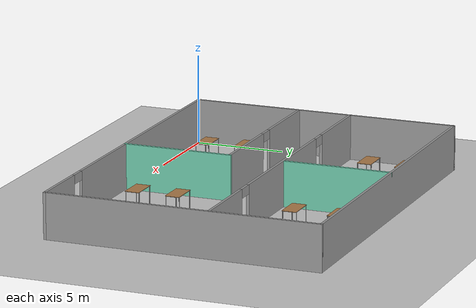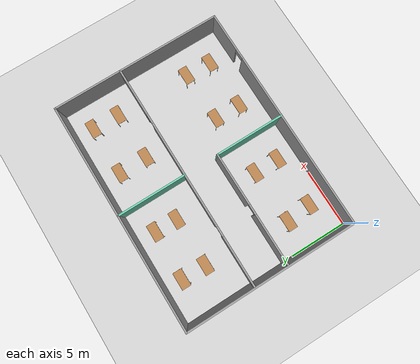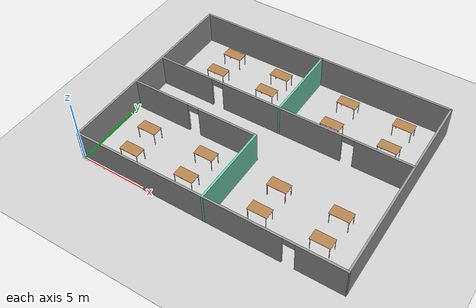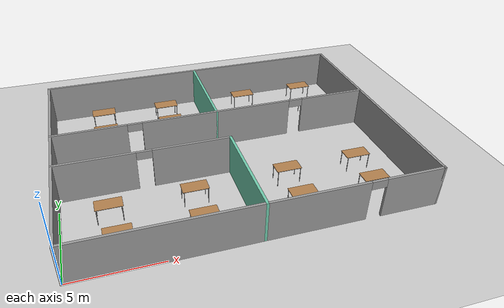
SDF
<sdf version="1.6">
 <world name="default">
  <plugin name="hello" filename="libhello.so"/>
  <light name="sun" type="directional">
   <pose>0 0 10 0 -0 0</pose>
   <diffuse>0.8 0.8 0.8 1</diffuse>
   <specular>0.2 0.2 0.2 1</specular>
   <attenuation>
    <range>1000</range>
    <constant>0.9</constant>
    <linear>0.01</linear>
    <quadratic>0.001</quadratic>
   </attenuation>
   <direction>-0.5 0.1 -0.9</direction>
  </light>
  <model name="ground_plane">
   <static>1</static>
   <link name="link">
    <collision name="collision">
     <geometry><plane><normal>0 0 1</normal><size>100 100</size></plane></geometry>
     <surface>
      <contact><collide_bitmask>65535</collide_bitmask></contact>
      <friction><ode><mu>100</mu><mu2>50</mu2></ode></friction>
     </surface>
    </collision>
    <visual name="visual">
     <cast_shadows>0</cast_shadows>
     <geometry><plane><normal>0 0 1</normal><size>100 100</size></plane></geometry>
     <material>
      <script><uri>file://media/materials/scripts/gazebo.material</uri><name>Gazebo/Grey</name></script>
     </material>
    </visual>
   </link>
  </model>
  <gravity>0 0 -9.8</gravity>
  <magnetic_field>6e-06 2.3e-05 -4.2e-05</magnetic_field>
  <atmosphere type="adiabatic"/>
  <physics name="default_physics" default="0" type="ode">
   <max_step_size>0.001</max_step_size>
   <real_time_factor>1</real_time_factor>
   <real_time_update_rate>1000</real_time_update_rate>
  </physics>
  <scene><ambient>0.4 0.4 0.4 1</ambient><background>0.7 0.7 0.7 1</background><shadows>1</shadows></scene>
  <spherical_coordinates>
   <surface_model>EARTH_WGS84</surface_model>
   <latitude_deg>0</latitude_deg>
   <longitude_deg>0</longitude_deg>
   <elevation>0</elevation>
   <heading_deg>0</heading_deg>
  </spherical_coordinates>
  <model name="mybuilding">
   <pose>10 7.5 0 0 -0 0</pose>
   <link name="Wall_11">
    <collision name="Wall_11_Collision">
     <geometry><box><size>15.15 0.15 2.5</size></box></geometry>
     <pose>0 0 1.25 0 -0 0</pose>
    </collision>
    <visual name="Wall_11_Visual">
     <pose>0 0 1.25 0 -0 0</pose>
     <geometry><box><size>15.15 0.15 2.5</size></box></geometry>
     <material>
      <script><uri>file://media/materials/scripts/gazebo.material</uri><name>Gazebo/Grey</name></script>
      <ambient>1 1 1 1</ambient>
     </material>
     <meta><layer>0</layer></meta>
    </visual>
    <pose>-10 0 0 0 -0 1.5708</pose>
   </link>
   <link name="Wall_13">
    <collision name="Wall_13_Collision">
     <geometry><box><size>20.15 0.15 2.5</size></box></geometry>
     <pose>0 0 1.25 0 -0 0</pose>
    </collision>
    <visual name="Wall_13_Visual">
     <pose>0 0 1.25 0 -0 0</pose>
     <geometry><box><size>20.15 0.15 2.5</size></box></geometry>
     <material>
      <script><uri>file://media/materials/scripts/gazebo.material</uri><name>Gazebo/Grey</name></script>
      <ambient>1 1 1 1</ambient>
     </material>
     <meta><layer>0</layer></meta>
    </visual>
    <pose>0 7.5 0 0 -0 0</pose>
   </link>
   <link name="Wall_15">
    <collision name="Wall_15_Collision">
     <geometry><box><size>15.15 0.15 2.5</size></box></geometry>
     <pose>0 0 1.25 0 -0 0</pose>
    </collision>
    <visual name="Wall_15_Visual">
     <pose>0 0 1.25 0 -0 0</pose>
     <geometry><box><size>15.15 0.15 2.5</size></box></geometry>
     <material>
      <script><uri>file://media/materials/scripts/gazebo.material</uri><name>Gazebo/Grey</name></script>
      <ambient>1 1 1 1</ambient>
     </material>
     <meta><layer>0</layer></meta>
    </visual>
    <pose>10 0 0 0 0 -1.5708</pose>
   </link>
   <link name="Wall_17">
    <pose>0 1.5 0 0 -0 0</pose>
    <visual name="Wall_17_Visual_0">
     <pose>-7.81586 0 1.25 0 -0 0</pose>
     <geometry><box><size>4.51827 0.15 2.5</size></box></geometry>
     <material>
      <script><uri>file://media/materials/scripts/gazebo.material</uri><name>Gazebo/Grey</name></script>
      <ambient>1 1 1 1</ambient>
     </material>
     <meta><layer>0</layer></meta>
    </visual>
    <collision name="Wall_17_Collision_0">
     <geometry><box><size>4.51827 0.15 2.5</size></box></geometry>
     <pose>-7.81586 0 1.25 0 -0 0</pose>
    </collision>
    <visual name="Wall_17_Visual_1">
     <pose>0.10099 0 1.25 0 -0 0</pose>
     <geometry><box><size>9.51544 0.15 2.5</size></box></geometry>
     <material>
      <script><uri>file://media/materials/scripts/gazebo.material</uri><name>Gazebo/Grey</name></script>
      <ambient>1 1 1 1</ambient>
     </material>
     <meta><layer>0</layer></meta>
    </visual>
    <collision name="Wall_17_Collision_1">
     <geometry><box><size>9.51544 0.15 2.5</size></box></geometry>
     <pose>0.10099 0 1.25 0 -0 0</pose>
    </collision>
    <visual name="Wall_17_Visual_2">
     <pose>7.91685 0 1.25 0 -0 0</pose>
     <geometry><box><size>4.31629 0.15 2.5</size></box></geometry>
     <material>
      <script><uri>file://media/materials/scripts/gazebo.material</uri><name>Gazebo/Grey</name></script>
      <ambient>1 1 1 1</ambient>
     </material>
     <meta><layer>0</layer></meta>
    </visual>
    <collision name="Wall_17_Collision_2">
     <geometry><box><size>4.31629 0.15 2.5</size></box></geometry>
     <pose>7.91685 0 1.25 0 -0 0</pose>
    </collision>
    <visual name="Wall_17_Visual_3">
     <pose>-5.10673 0 2.25 0 -0 0</pose>
     <geometry><box><size>0.9 0.15 0.5</size></box></geometry>
     <material>
      <script><uri>file://media/materials/scripts/gazebo.material</uri><name>Gazebo/Grey</name></script>
      <ambient>1 1 1 1</ambient>
     </material>
     <meta><layer>0</layer></meta>
    </visual>
    <collision name="Wall_17_Collision_3">
     <geometry><box><size>0.9 0.15 0.5</size></box></geometry>
     <pose>-5.10673 0 2.25 0 -0 0</pose>
    </collision>
    <visual name="Wall_17_Visual_4">
     <pose>5.30871 0 2.25 0 -0 0</pose>
     <geometry><box><size>0.9 0.15 0.5</size></box></geometry>
     <material>
      <script><uri>file://media/materials/scripts/gazebo.material</uri><name>Gazebo/Grey</name></script>
      <ambient>1 1 1 1</ambient>
     </material>
     <meta><layer>0</layer></meta>
    </visual>
    <collision name="Wall_17_Collision_4">
     <geometry><box><size>0.9 0.15 0.5</size></box></geometry>
     <pose>5.30871 0 2.25 0 -0 0</pose>
    </collision>
   </link>
   <link name="Wall_19">
    <collision name="Wall_19_Collision">
     <geometry><box><size>6.15 0.15 2.5</size></box></geometry>
     <pose>0 0 1.25 0 -0 0</pose>
    </collision>
    <visual name="Wall_19_Visual">
     <pose>0 0 1.25 0 -0 0</pose>
     <geometry><box><size>6.15 0.15 2.5</size></box></geometry>
     <material>
      <script><uri>file://media/materials/scripts/gazebo.material</uri><name>Gazebo/Grey</name></script>
      <ambient>0.435294 0.796078 0.67451 1</ambient>
     </material>
     <meta><layer>0</layer></meta>
    </visual>
    <pose>0 4.5 0 0 0 -1.5708</pose>
   </link>
   <link name="Wall_21">
    <pose>-5 -1.5 0 0 -0 0</pose>
    <visual name="Wall_21_Visual_0">
     <pose>-2.77518 0 1.25 0 -0 0</pose>
     <geometry><box><size>4.59964 0.15 2.5</size></box></geometry>
     <material>
      <script><uri>file://media/materials/scripts/gazebo.material</uri><name>Gazebo/Grey</name></script>
      <ambient>1 1 1 1</ambient>
     </material>
     <meta><layer>0</layer></meta>
    </visual>
    <collision name="Wall_21_Collision_0">
     <geometry><box><size>4.59964 0.15 2.5</size></box></geometry>
     <pose>-2.77518 0 1.25 0 -0 0</pose>
    </collision>
    <visual name="Wall_21_Visual_1">
     <pose>2.74982 0 1.25 0 -0 0</pose>
     <geometry><box><size>4.65036 0.15 2.5</size></box></geometry>
     <material>
      <script><uri>file://media/materials/scripts/gazebo.material</uri><name>Gazebo/Grey</name></script>
      <ambient>1 1 1 1</ambient>
     </material>
     <meta><layer>0</layer></meta>
    </visual>
    <collision name="Wall_21_Collision_1">
     <geometry><box><size>4.65036 0.15 2.5</size></box></geometry>
     <pose>2.74982 0 1.25 0 -0 0</pose>
    </collision>
    <visual name="Wall_21_Visual_2">
     <pose>-0.02536 0 2.25 0 -0 0</pose>
     <geometry><box><size>0.9 0.15 0.5</size></box></geometry>
     <material>
      <script><uri>file://media/materials/scripts/gazebo.material</uri><name>Gazebo/Grey</name></script>
      <ambient>1 1 1 1</ambient>
     </material>
     <meta><layer>0</layer></meta>
    </visual>
    <collision name="Wall_21_Collision_2">
     <geometry><box><size>0.9 0.15 0.5</size></box></geometry>
     <pose>-0.02536 0 2.25 0 -0 0</pose>
    </collision>
   </link>
   <link name="Wall_24">
    <collision name="Wall_24_Collision">
     <geometry><box><size>6.15 0.15 2.5</size></box></geometry>
     <pose>0 0 1.25 0 -0 0</pose>
    </collision>
    <visual name="Wall_24_Visual">
     <pose>0 0 1.25 0 -0 0</pose>
     <geometry><box><size>6.15 0.15 2.5</size></box></geometry>
     <material>
      <script><uri>file://media/materials/scripts/gazebo.material</uri><name>Gazebo/Grey</name></script>
      <ambient>0.435294 0.796078 0.67451 1</ambient>
     </material>
     <meta><layer>0</layer></meta>
    </visual>
    <pose>0 -4.5 0 0 0 -1.5708</pose>
   </link>
   <link name="Wall_9">
    <pose>0 -7.5 0 0 -0 0</pose>
    <visual name="Wall_9_Visual_0">
     <pose>-2.20129 0 1.25 0 -0 0</pose>
     <geometry><box><size>15.7474 0.15 2.5</size></box></geometry>
     <material>
      <script><uri>file://media/materials/scripts/gazebo.material</uri><name>Gazebo/Grey</name></script>
      <ambient>1 1 1 1</ambient>
     </material>
     <meta><layer>0</layer></meta>
    </visual>
    <collision name="Wall_9_Collision_0">
     <geometry><box><size>15.7474 0.15 2.5</size></box></geometry>
     <pose>-2.20129 0 1.25 0 -0 0</pose>
    </collision>
    <visual name="Wall_9_Visual_1">
     <pose>8.32371 0 1.25 0 -0 0</pose>
     <geometry><box><size>3.50258 0.15 2.5</size></box></geometry>
     <material>
      <script><uri>file://media/materials/scripts/gazebo.material</uri><name>Gazebo/Grey</name></script>
      <ambient>1 1 1 1</ambient>
     </material>
     <meta><layer>0</layer></meta>
    </visual>
    <collision name="Wall_9_Collision_1">
     <geometry><box><size>3.50258 0.15 2.5</size></box></geometry>
     <pose>8.32371 0 1.25 0 -0 0</pose>
    </collision>
    <visual name="Wall_9_Visual_2">
     <pose>6.12242 0 2.25 0 -0 0</pose>
     <geometry><box><size>0.9 0.15 0.5</size></box></geometry>
     <material>
      <script><uri>file://media/materials/scripts/gazebo.material</uri><name>Gazebo/Grey</name></script>
      <ambient>1 1 1 1</ambient>
     </material>
     <meta><layer>0</layer></meta>
    </visual>
    <collision name="Wall_9_Collision_2">
     <geometry><box><size>0.9 0.15 0.5</size></box></geometry>
     <pose>6.12242 0 2.25 0 -0 0</pose>
    </collision>
   </link>
   <static>1</static>
  </model>
  <model name="table">
   <static>1</static>
   <link name="link">
    <collision name="surface">
     <pose>0 0 1 0 -0 0</pose>
     <geometry><box><size>1.5 0.8 0.03</size></box></geometry>
     <surface><friction><ode><mu>0.6</mu><mu2>0.6</mu2></ode></friction></surface>
    </collision>
    <visual name="visual1">
     <pose>0 0 1 0 -0 0</pose>
     <geometry><box><size>1.5 0.8 0.03</size></box></geometry>
     <material>
      <script><uri>file://media/materials/scripts/gazebo.material</uri><name>Gazebo/Wood</name></script>
     </material>
    </visual>
    <collision name="front_left_leg">
     <pose>0.68 0.38 0.5 0 -0 0</pose>
     <geometry><cylinder><radius>0.02</radius><length>1</length></cylinder></geometry>
    </collision>
    <visual name="front_left_leg">
     <pose>0.68 0.38 0.5 0 -0 0</pose>
     <geometry><cylinder><radius>0.02</radius><length>1</length></cylinder></geometry>
     <material>
      <script><uri>file://media/materials/scripts/gazebo.material</uri><name>Gazebo/Grey</name></script>
     </material>
    </visual>
    <collision name="front_right_leg">
     <pose>0.68 -0.38 0.5 0 -0 0</pose>
     <geometry><cylinder><radius>0.02</radius><length>1</length></cylinder></geometry>
    </collision>
    <visual name="front_right_leg">
     <pose>0.68 -0.38 0.5 0 -0 0</pose>
     <geometry><cylinder><radius>0.02</radius><length>1</length></cylinder></geometry>
     <material>
      <script><uri>file://media/materials/scripts/gazebo.material</uri><name>Gazebo/Grey</name></script>
     </material>
    </visual>
    <collision name="back_right_leg">
     <pose>-0.68 -0.38 0.5 0 -0 0</pose>
     <geometry><cylinder><radius>0.02</radius><length>1</length></cylinder></geometry>
    </collision>
    <visual name="back_right_leg">
     <pose>-0.68 -0.38 0.5 0 -0 0</pose>
     <geometry><cylinder><radius>0.02</radius><length>1</length></cylinder></geometry>
     <material>
      <script><uri>file://media/materials/scripts/gazebo.material</uri><name>Gazebo/Grey</name></script>
     </material>
    </visual>
    <collision name="back_left_leg">
     <pose>-0.68 0.38 0.5 0 -0 0</pose>
     <geometry><cylinder><radius>0.02</radius><length>1</length></cylinder></geometry>
    </collision>
    <visual name="back_left_leg">
     <pose>-0.68 0.38 0.5 0 -0 0</pose>
     <geometry><cylinder><radius>0.02</radius><length>1</length></cylinder></geometry>
     <material>
      <script><uri>file://media/materials/scripts/gazebo.material</uri><name>Gazebo/Grey</name></script>
     </material>
    </visual>
   </link>
   <pose>17.3802 4.37607 0 0 -0 0</pose>
  </model>
  <model name="table_clone">
   <static>1</static>
   <link name="link">
    <collision name="surface">
     <pose>0 0 1 0 -0 0</pose>
     <geometry><box><size>1.5 0.8 0.03</size></box></geometry>
     <surface><friction><ode><mu>0.6</mu><mu2>0.6</mu2></ode></friction></surface>
    </collision>
    <visual name="visual1">
     <pose>0 0 1 0 -0 0</pose>
     <geometry><box><size>1.5 0.8 0.03</size></box></geometry>
     <material>
      <script><uri>file://media/materials/scripts/gazebo.material</uri><name>Gazebo/Wood</name></script>
     </material>
    </visual>
    <collision name="front_left_leg">
     <pose>0.68 0.38 0.5 0 -0 0</pose>
     <geometry><cylinder><radius>0.02</radius><length>1</length></cylinder></geometry>
    </collision>
    <visual name="front_left_leg">
     <pose>0.68 0.38 0.5 0 -0 0</pose>
     <geometry><cylinder><radius>0.02</radius><length>1</length></cylinder></geometry>
     <material>
      <script><uri>file://media/materials/scripts/gazebo.material</uri><name>Gazebo/Grey</name></script>
     </material>
    </visual>
    <collision name="front_right_leg">
     <pose>0.68 -0.38 0.5 0 -0 0</pose>
     <geometry><cylinder><radius>0.02</radius><length>1</length></cylinder></geometry>
    </collision>
    <visual name="front_right_leg">
     <pose>0.68 -0.38 0.5 0 -0 0</pose>
     <geometry><cylinder><radius>0.02</radius><length>1</length></cylinder></geometry>
     <material>
      <script><uri>file://media/materials/scripts/gazebo.material</uri><name>Gazebo/Grey</name></script>
     </material>
    </visual>
    <collision name="back_right_leg">
     <pose>-0.68 -0.38 0.5 0 -0 0</pose>
     <geometry><cylinder><radius>0.02</radius><length>1</length></cylinder></geometry>
    </collision>
    <visual name="back_right_leg">
     <pose>-0.68 -0.38 0.5 0 -0 0</pose>
     <geometry><cylinder><radius>0.02</radius><length>1</length></cylinder></geometry>
     <material>
      <script><uri>file://media/materials/scripts/gazebo.material</uri><name>Gazebo/Grey</name></script>
     </material>
    </visual>
    <collision name="back_left_leg">
     <pose>-0.68 0.38 0.5 0 -0 0</pose>
     <geometry><cylinder><radius>0.02</radius><length>1</length></cylinder></geometry>
    </collision>
    <visual name="back_left_leg">
     <pose>-0.68 0.38 0.5 0 -0 0</pose>
     <geometry><cylinder><radius>0.02</radius><length>1</length></cylinder></geometry>
     <material>
      <script><uri>file://media/materials/scripts/gazebo.material</uri><name>Gazebo/Grey</name></script>
     </material>
    </visual>
   </link>
   <pose>12.8854 1.98216 0 0 -0 0</pose>
  </model>
  <model name="table_clone_0">
   <static>1</static>
   <link name="link">
    <collision name="surface">
     <pose>0 0 1 0 -0 0</pose>
     <geometry><box><size>1.5 0.8 0.03</size></box></geometry>
     <surface><friction><ode><mu>0.6</mu><mu2>0.6</mu2></ode></friction></surface>
    </collision>
    <visual name="visual1">
     <pose>0 0 1 0 -0 0</pose>
     <geometry><box><size>1.5 0.8 0.03</size></box></geometry>
     <material>
      <script><uri>file://media/materials/scripts/gazebo.material</uri><name>Gazebo/Wood</name></script>
     </material>
    </visual>
    <collision name="front_left_leg">
     <pose>0.68 0.38 0.5 0 -0 0</pose>
     <geometry><cylinder><radius>0.02</radius><length>1</length></cylinder></geometry>
    </collision>
    <visual name="front_left_leg">
     <pose>0.68 0.38 0.5 0 -0 0</pose>
     <geometry><cylinder><radius>0.02</radius><length>1</length></cylinder></geometry>
     <material>
      <script><uri>file://media/materials/scripts/gazebo.material</uri><name>Gazebo/Grey</name></script>
     </material>
    </visual>
    <collision name="front_right_leg">
     <pose>0.68 -0.38 0.5 0 -0 0</pose>
     <geometry><cylinder><radius>0.02</radius><length>1</length></cylinder></geometry>
    </collision>
    <visual name="front_right_leg">
     <pose>0.68 -0.38 0.5 0 -0 0</pose>
     <geometry><cylinder><radius>0.02</radius><length>1</length></cylinder></geometry>
     <material>
      <script><uri>file://media/materials/scripts/gazebo.material</uri><name>Gazebo/Grey</name></script>
     </material>
    </visual>
    <collision name="back_right_leg">
     <pose>-0.68 -0.38 0.5 0 -0 0</pose>
     <geometry><cylinder><radius>0.02</radius><length>1</length></cylinder></geometry>
    </collision>
    <visual name="back_right_leg">
     <pose>-0.68 -0.38 0.5 0 -0 0</pose>
     <geometry><cylinder><radius>0.02</radius><length>1</length></cylinder></geometry>
     <material>
      <script><uri>file://media/materials/scripts/gazebo.material</uri><name>Gazebo/Grey</name></script>
     </material>
    </visual>
    <collision name="back_left_leg">
     <pose>-0.68 0.38 0.5 0 -0 0</pose>
     <geometry><cylinder><radius>0.02</radius><length>1</length></cylinder></geometry>
    </collision>
    <visual name="back_left_leg">
     <pose>-0.68 0.38 0.5 0 -0 0</pose>
     <geometry><cylinder><radius>0.02</radius><length>1</length></cylinder></geometry>
     <material>
      <script><uri>file://media/materials/scripts/gazebo.material</uri><name>Gazebo/Grey</name></script>
     </material>
    </visual>
   </link>
   <pose>12.9011 4.26699 0 0 -0 0</pose>
  </model>
  <model name="table_clone_1">
   <static>1</static>
   <link name="link">
    <collision name="surface">
     <pose>0 0 1 0 -0 0</pose>
     <geometry><box><size>1.5 0.8 0.03</size></box></geometry>
     <surface><friction><ode><mu>0.6</mu><mu2>0.6</mu2></ode></friction></surface>
    </collision>
    <visual name="visual1">
     <pose>0 0 1 0 -0 0</pose>
     <geometry><box><size>1.5 0.8 0.03</size></box></geometry>
     <material>
      <script><uri>file://media/materials/scripts/gazebo.material</uri><name>Gazebo/Wood</name></script>
     </material>
    </visual>
    <collision name="front_left_leg">
     <pose>0.68 0.38 0.5 0 -0 0</pose>
     <geometry><cylinder><radius>0.02</radius><length>1</length></cylinder></geometry>
    </collision>
    <visual name="front_left_leg">
     <pose>0.68 0.38 0.5 0 -0 0</pose>
     <geometry><cylinder><radius>0.02</radius><length>1</length></cylinder></geometry>
     <material>
      <script><uri>file://media/materials/scripts/gazebo.material</uri><name>Gazebo/Grey</name></script>
     </material>
    </visual>
    <collision name="front_right_leg">
     <pose>0.68 -0.38 0.5 0 -0 0</pose>
     <geometry><cylinder><radius>0.02</radius><length>1</length></cylinder></geometry>
    </collision>
    <visual name="front_right_leg">
     <pose>0.68 -0.38 0.5 0 -0 0</pose>
     <geometry><cylinder><radius>0.02</radius><length>1</length></cylinder></geometry>
     <material>
      <script><uri>file://media/materials/scripts/gazebo.material</uri><name>Gazebo/Grey</name></script>
     </material>
    </visual>
    <collision name="back_right_leg">
     <pose>-0.68 -0.38 0.5 0 -0 0</pose>
     <geometry><cylinder><radius>0.02</radius><length>1</length></cylinder></geometry>
    </collision>
    <visual name="back_right_leg">
     <pose>-0.68 -0.38 0.5 0 -0 0</pose>
     <geometry><cylinder><radius>0.02</radius><length>1</length></cylinder></geometry>
     <material>
      <script><uri>file://media/materials/scripts/gazebo.material</uri><name>Gazebo/Grey</name></script>
     </material>
    </visual>
    <collision name="back_left_leg">
     <pose>-0.68 0.38 0.5 0 -0 0</pose>
     <geometry><cylinder><radius>0.02</radius><length>1</length></cylinder></geometry>
    </collision>
    <visual name="back_left_leg">
     <pose>-0.68 0.38 0.5 0 -0 0</pose>
     <geometry><cylinder><radius>0.02</radius><length>1</length></cylinder></geometry>
     <material>
      <script><uri>file://media/materials/scripts/gazebo.material</uri><name>Gazebo/Grey</name></script>
     </material>
    </visual>
   </link>
   <pose>17.2977 2.08785 0 0 -0 0</pose>
  </model>
  <model name="table_0">
   <static>1</static>
   <link name="link">
    <collision name="surface">
     <pose>0 0 1 0 -0 0</pose>
     <geometry><box><size>1.5 0.8 0.03</size></box></geometry>
     <surface><friction><ode><mu>0.6</mu><mu2>0.6</mu2></ode></friction></surface>
    </collision>
    <visual name="visual1">
     <pose>0 0 1 0 -0 0</pose>
     <geometry><box><size>1.5 0.8 0.03</size></box></geometry>
     <material>
      <script><uri>file://media/materials/scripts/gazebo.material</uri><name>Gazebo/Wood</name></script>
     </material>
    </visual>
    <collision name="front_left_leg">
     <pose>0.68 0.38 0.5 0 -0 0</pose>
     <geometry><cylinder><radius>0.02</radius><length>1</length></cylinder></geometry>
    </collision>
    <visual name="front_left_leg">
     <pose>0.68 0.38 0.5 0 -0 0</pose>
     <geometry><cylinder><radius>0.02</radius><length>1</length></cylinder></geometry>
     <material>
      <script><uri>file://media/materials/scripts/gazebo.material</uri><name>Gazebo/Grey</name></script>
     </material>
    </visual>
    <collision name="front_right_leg">
     <pose>0.68 -0.38 0.5 0 -0 0</pose>
     <geometry><cylinder><radius>0.02</radius><length>1</length></cylinder></geometry>
    </collision>
    <visual name="front_right_leg">
     <pose>0.68 -0.38 0.5 0 -0 0</pose>
     <geometry><cylinder><radius>0.02</radius><length>1</length></cylinder></geometry>
     <material>
      <script><uri>file://media/materials/scripts/gazebo.material</uri><name>Gazebo/Grey</name></script>
     </material>
    </visual>
    <collision name="back_right_leg">
     <pose>-0.68 -0.38 0.5 0 -0 0</pose>
     <geometry><cylinder><radius>0.02</radius><length>1</length></cylinder></geometry>
    </collision>
    <visual name="back_right_leg">
     <pose>-0.68 -0.38 0.5 0 -0 0</pose>
     <geometry><cylinder><radius>0.02</radius><length>1</length></cylinder></geometry>
     <material>
      <script><uri>file://media/materials/scripts/gazebo.material</uri><name>Gazebo/Grey</name></script>
     </material>
    </visual>
    <collision name="back_left_leg">
     <pose>-0.68 0.38 0.5 0 -0 0</pose>
     <geometry><cylinder><radius>0.02</radius><length>1</length></cylinder></geometry>
    </collision>
    <visual name="back_left_leg">
     <pose>-0.68 0.38 0.5 0 -0 0</pose>
     <geometry><cylinder><radius>0.02</radius><length>1</length></cylinder></geometry>
     <material>
      <script><uri>file://media/materials/scripts/gazebo.material</uri><name>Gazebo/Grey</name></script>
     </material>
    </visual>
   </link>
   <pose>7.55328 13.3497 0 0 -0 0</pose>
  </model>
  <model name="table_clone_2">
   <static>1</static>
   <link name="link">
    <collision name="surface">
     <pose>0 0 1 0 -0 0</pose>
     <geometry><box><size>1.5 0.8 0.03</size></box></geometry>
     <surface><friction><ode><mu>0.6</mu><mu2>0.6</mu2></ode></friction></surface>
    </collision>
    <visual name="visual1">
     <pose>0 0 1 0 -0 0</pose>
     <geometry><box><size>1.5 0.8 0.03</size></box></geometry>
     <material>
      <script><uri>file://media/materials/scripts/gazebo.material</uri><name>Gazebo/Wood</name></script>
     </material>
    </visual>
    <collision name="front_left_leg">
     <pose>0.68 0.38 0.5 0 -0 0</pose>
     <geometry><cylinder><radius>0.02</radius><length>1</length></cylinder></geometry>
    </collision>
    <visual name="front_left_leg">
     <pose>0.68 0.38 0.5 0 -0 0</pose>
     <geometry><cylinder><radius>0.02</radius><length>1</length></cylinder></geometry>
     <material>
      <script><uri>file://media/materials/scripts/gazebo.material</uri><name>Gazebo/Grey</name></script>
     </material>
    </visual>
    <collision name="front_right_leg">
     <pose>0.68 -0.38 0.5 0 -0 0</pose>
     <geometry><cylinder><radius>0.02</radius><length>1</length></cylinder></geometry>
    </collision>
    <visual name="front_right_leg">
     <pose>0.68 -0.38 0.5 0 -0 0</pose>
     <geometry><cylinder><radius>0.02</radius><length>1</length></cylinder></geometry>
     <material>
      <script><uri>file://media/materials/scripts/gazebo.material</uri><name>Gazebo/Grey</name></script>
     </material>
    </visual>
    <collision name="back_right_leg">
     <pose>-0.68 -0.38 0.5 0 -0 0</pose>
     <geometry><cylinder><radius>0.02</radius><length>1</length></cylinder></geometry>
    </collision>
    <visual name="back_right_leg">
     <pose>-0.68 -0.38 0.5 0 -0 0</pose>
     <geometry><cylinder><radius>0.02</radius><length>1</length></cylinder></geometry>
     <material>
      <script><uri>file://media/materials/scripts/gazebo.material</uri><name>Gazebo/Grey</name></script>
     </material>
    </visual>
    <collision name="back_left_leg">
     <pose>-0.68 0.38 0.5 0 -0 0</pose>
     <geometry><cylinder><radius>0.02</radius><length>1</length></cylinder></geometry>
    </collision>
    <visual name="back_left_leg">
     <pose>-0.68 0.38 0.5 0 -0 0</pose>
     <geometry><cylinder><radius>0.02</radius><length>1</length></cylinder></geometry>
     <material>
      <script><uri>file://media/materials/scripts/gazebo.material</uri><name>Gazebo/Grey</name></script>
     </material>
    </visual>
   </link>
   <pose>3.3068 13.4619 0 0 -0 0</pose>
  </model>
  <model name="table_1">
   <static>1</static>
   <link name="link">
    <collision name="surface">
     <pose>0 0 1 0 -0 0</pose>
     <geometry><box><size>1.5 0.8 0.03</size></box></geometry>
     <surface><friction><ode><mu>0.6</mu><mu2>0.6</mu2></ode></friction></surface>
    </collision>
    <visual name="visual1">
     <pose>0 0 1 0 -0 0</pose>
     <geometry><box><size>1.5 0.8 0.03</size></box></geometry>
     <material>
      <script><uri>file://media/materials/scripts/gazebo.material</uri><name>Gazebo/Wood</name></script>
     </material>
    </visual>
    <collision name="front_left_leg">
     <pose>0.68 0.38 0.5 0 -0 0</pose>
     <geometry><cylinder><radius>0.02</radius><length>1</length></cylinder></geometry>
    </collision>
    <visual name="front_left_leg">
     <pose>0.68 0.38 0.5 0 -0 0</pose>
     <geometry><cylinder><radius>0.02</radius><length>1</length></cylinder></geometry>
     <material>
      <script><uri>file://media/materials/scripts/gazebo.material</uri><name>Gazebo/Grey</name></script>
     </material>
    </visual>
    <collision name="front_right_leg">
     <pose>0.68 -0.38 0.5 0 -0 0</pose>
     <geometry><cylinder><radius>0.02</radius><length>1</length></cylinder></geometry>
    </collision>
    <visual name="front_right_leg">
     <pose>0.68 -0.38 0.5 0 -0 0</pose>
     <geometry><cylinder><radius>0.02</radius><length>1</length></cylinder></geometry>
     <material>
      <script><uri>file://media/materials/scripts/gazebo.material</uri><name>Gazebo/Grey</name></script>
     </material>
    </visual>
    <collision name="back_right_leg">
     <pose>-0.68 -0.38 0.5 0 -0 0</pose>
     <geometry><cylinder><radius>0.02</radius><length>1</length></cylinder></geometry>
    </collision>
    <visual name="back_right_leg">
     <pose>-0.68 -0.38 0.5 0 -0 0</pose>
     <geometry><cylinder><radius>0.02</radius><length>1</length></cylinder></geometry>
     <material>
      <script><uri>file://media/materials/scripts/gazebo.material</uri><name>Gazebo/Grey</name></script>
     </material>
    </visual>
    <collision name="back_left_leg">
     <pose>-0.68 0.38 0.5 0 -0 0</pose>
     <geometry><cylinder><radius>0.02</radius><length>1</length></cylinder></geometry>
    </collision>
    <visual name="back_left_leg">
     <pose>-0.68 0.38 0.5 0 -0 0</pose>
     <geometry><cylinder><radius>0.02</radius><length>1</length></cylinder></geometry>
     <material>
      <script><uri>file://media/materials/scripts/gazebo.material</uri><name>Gazebo/Grey</name></script>
     </material>
    </visual>
   </link>
   <pose>17.504 13.3719 0 0 -0 0</pose>
  </model>
  <model name="table_2">
   <static>1</static>
   <link name="link">
    <collision name="surface">
     <pose>0 0 1 0 -0 0</pose>
     <geometry><box><size>1.5 0.8 0.03</size></box></geometry>
     <surface><friction><ode><mu>0.6</mu><mu2>0.6</mu2></ode></friction></surface>
    </collision>
    <visual name="visual1">
     <pose>0 0 1 0 -0 0</pose>
     <geometry><box><size>1.5 0.8 0.03</size></box></geometry>
     <material>
      <script><uri>file://media/materials/scripts/gazebo.material</uri><name>Gazebo/Wood</name></script>
     </material>
    </visual>
    <collision name="front_left_leg">
     <pose>0.68 0.38 0.5 0 -0 0</pose>
     <geometry><cylinder><radius>0.02</radius><length>1</length></cylinder></geometry>
    </collision>
    <visual name="front_left_leg">
     <pose>0.68 0.38 0.5 0 -0 0</pose>
     <geometry><cylinder><radius>0.02</radius><length>1</length></cylinder></geometry>
     <material>
      <script><uri>file://media/materials/scripts/gazebo.material</uri><name>Gazebo/Grey</name></script>
     </material>
    </visual>
    <collision name="front_right_leg">
     <pose>0.68 -0.38 0.5 0 -0 0</pose>
     <geometry><cylinder><radius>0.02</radius><length>1</length></cylinder></geometry>
    </collision>
    <visual name="front_right_leg">
     <pose>0.68 -0.38 0.5 0 -0 0</pose>
     <geometry><cylinder><radius>0.02</radius><length>1</length></cylinder></geometry>
     <material>
      <script><uri>file://media/materials/scripts/gazebo.material</uri><name>Gazebo/Grey</name></script>
     </material>
    </visual>
    <collision name="back_right_leg">
     <pose>-0.68 -0.38 0.5 0 -0 0</pose>
     <geometry><cylinder><radius>0.02</radius><length>1</length></cylinder></geometry>
    </collision>
    <visual name="back_right_leg">
     <pose>-0.68 -0.38 0.5 0 -0 0</pose>
     <geometry><cylinder><radius>0.02</radius><length>1</length></cylinder></geometry>
     <material>
      <script><uri>file://media/materials/scripts/gazebo.material</uri><name>Gazebo/Grey</name></script>
     </material>
    </visual>
    <collision name="back_left_leg">
     <pose>-0.68 0.38 0.5 0 -0 0</pose>
     <geometry><cylinder><radius>0.02</radius><length>1</length></cylinder></geometry>
    </collision>
    <visual name="back_left_leg">
     <pose>-0.68 0.38 0.5 0 -0 0</pose>
     <geometry><cylinder><radius>0.02</radius><length>1</length></cylinder></geometry>
     <material>
      <script><uri>file://media/materials/scripts/gazebo.material</uri><name>Gazebo/Grey</name></script>
     </material>
    </visual>
   </link>
   <pose>13.1412 13.36 0 0 -0 0</pose>
  </model>
  <model name="table_3">
   <static>1</static>
   <link name="link">
    <collision name="surface">
     <pose>0 0 1 0 -0 0</pose>
     <geometry><box><size>1.5 0.8 0.03</size></box></geometry>
     <surface><friction><ode><mu>0.6</mu><mu2>0.6</mu2></ode></friction></surface>
    </collision>
    <visual name="visual1">
     <pose>0 0 1 0 -0 0</pose>
     <geometry><box><size>1.5 0.8 0.03</size></box></geometry>
     <material>
      <script><uri>file://media/materials/scripts/gazebo.material</uri><name>Gazebo/Wood</name></script>
     </material>
    </visual>
    <collision name="front_left_leg">
     <pose>0.68 0.38 0.5 0 -0 0</pose>
     <geometry><cylinder><radius>0.02</radius><length>1</length></cylinder></geometry>
    </collision>
    <visual name="front_left_leg">
     <pose>0.68 0.38 0.5 0 -0 0</pose>
     <geometry><cylinder><radius>0.02</radius><length>1</length></cylinder></geometry>
     <material>
      <script><uri>file://media/materials/scripts/gazebo.material</uri><name>Gazebo/Grey</name></script>
     </material>
    </visual>
    <collision name="front_right_leg">
     <pose>0.68 -0.38 0.5 0 -0 0</pose>
     <geometry><cylinder><radius>0.02</radius><length>1</length></cylinder></geometry>
    </collision>
    <visual name="front_right_leg">
     <pose>0.68 -0.38 0.5 0 -0 0</pose>
     <geometry><cylinder><radius>0.02</radius><length>1</length></cylinder></geometry>
     <material>
      <script><uri>file://media/materials/scripts/gazebo.material</uri><name>Gazebo/Grey</name></script>
     </material>
    </visual>
    <collision name="back_right_leg">
     <pose>-0.68 -0.38 0.5 0 -0 0</pose>
     <geometry><cylinder><radius>0.02</radius><length>1</length></cylinder></geometry>
    </collision>
    <visual name="back_right_leg">
     <pose>-0.68 -0.38 0.5 0 -0 0</pose>
     <geometry><cylinder><radius>0.02</radius><length>1</length></cylinder></geometry>
     <material>
      <script><uri>file://media/materials/scripts/gazebo.material</uri><name>Gazebo/Grey</name></script>
     </material>
    </visual>
    <collision name="back_left_leg">
     <pose>-0.68 0.38 0.5 0 -0 0</pose>
     <geometry><cylinder><radius>0.02</radius><length>1</length></cylinder></geometry>
    </collision>
    <visual name="back_left_leg">
     <pose>-0.68 0.38 0.5 0 -0 0</pose>
     <geometry><cylinder><radius>0.02</radius><length>1</length></cylinder></geometry>
     <material>
      <script><uri>file://media/materials/scripts/gazebo.material</uri><name>Gazebo/Grey</name></script>
     </material>
    </visual>
   </link>
   <pose>7.33008 4.00792 0 0 -0 0</pose>
  </model>
  <model name="table_4">
   <static>1</static>
   <link name="link">
    <collision name="surface">
     <pose>0 0 1 0 -0 0</pose>
     <geometry><box><size>1.5 0.8 0.03</size></box></geometry>
     <surface><friction><ode><mu>0.6</mu><mu2>0.6</mu2></ode></friction></surface>
    </collision>
    <visual name="visual1">
     <pose>0 0 1 0 -0 0</pose>
     <geometry><box><size>1.5 0.8 0.03</size></box></geometry>
     <material>
      <script><uri>file://media/materials/scripts/gazebo.material</uri><name>Gazebo/Wood</name></script>
     </material>
    </visual>
    <collision name="front_left_leg">
     <pose>0.68 0.38 0.5 0 -0 0</pose>
     <geometry><cylinder><radius>0.02</radius><length>1</length></cylinder></geometry>
    </collision>
    <visual name="front_left_leg">
     <pose>0.68 0.38 0.5 0 -0 0</pose>
     <geometry><cylinder><radius>0.02</radius><length>1</length></cylinder></geometry>
     <material>
      <script><uri>file://media/materials/scripts/gazebo.material</uri><name>Gazebo/Grey</name></script>
     </material>
    </visual>
    <collision name="front_right_leg">
     <pose>0.68 -0.38 0.5 0 -0 0</pose>
     <geometry><cylinder><radius>0.02</radius><length>1</length></cylinder></geometry>
    </collision>
    <visual name="front_right_leg">
     <pose>0.68 -0.38 0.5 0 -0 0</pose>
     <geometry><cylinder><radius>0.02</radius><length>1</length></cylinder></geometry>
     <material>
      <script><uri>file://media/materials/scripts/gazebo.material</uri><name>Gazebo/Grey</name></script>
     </material>
    </visual>
    <collision name="back_right_leg">
     <pose>-0.68 -0.38 0.5 0 -0 0</pose>
     <geometry><cylinder><radius>0.02</radius><length>1</length></cylinder></geometry>
    </collision>
    <visual name="back_right_leg">
     <pose>-0.68 -0.38 0.5 0 -0 0</pose>
     <geometry><cylinder><radius>0.02</radius><length>1</length></cylinder></geometry>
     <material>
      <script><uri>file://media/materials/scripts/gazebo.material</uri><name>Gazebo/Grey</name></script>
     </material>
    </visual>
    <collision name="back_left_leg">
     <pose>-0.68 0.38 0.5 0 -0 0</pose>
     <geometry><cylinder><radius>0.02</radius><length>1</length></cylinder></geometry>
    </collision>
    <visual name="back_left_leg">
     <pose>-0.68 0.38 0.5 0 -0 0</pose>
     <geometry><cylinder><radius>0.02</radius><length>1</length></cylinder></geometry>
     <material>
      <script><uri>file://media/materials/scripts/gazebo.material</uri><name>Gazebo/Grey</name></script>
     </material>
    </visual>
   </link>
   <pose>2.63408 3.89107 0 0 -0 0</pose>
  </model>
  <model name="table_clone_3">
   <static>1</static>
   <link name="link">
    <collision name="surface">
     <pose>0 0 1 0 -0 0</pose>
     <geometry><box><size>1.5 0.8 0.03</size></box></geometry>
     <surface><friction><ode><mu>0.6</mu><mu2>0.6</mu2></ode></friction></surface>
    </collision>
    <visual name="visual1">
     <pose>0 0 1 0 -0 0</pose>
     <geometry><box><size>1.5 0.8 0.03</size></box></geometry>
     <material>
      <script><uri>file://media/materials/scripts/gazebo.material</uri><name>Gazebo/Wood</name></script>
     </material>
    </visual>
    <collision name="front_left_leg">
     <pose>0.68 0.38 0.5 0 -0 0</pose>
     <geometry><cylinder><radius>0.02</radius><length>1</length></cylinder></geometry>
    </collision>
    <visual name="front_left_leg">
     <pose>0.68 0.38 0.5 0 -0 0</pose>
     <geometry><cylinder><radius>0.02</radius><length>1</length></cylinder></geometry>
     <material>
      <script><uri>file://media/materials/scripts/gazebo.material</uri><name>Gazebo/Grey</name></script>
     </material>
    </visual>
    <collision name="front_right_leg">
     <pose>0.68 -0.38 0.5 0 -0 0</pose>
     <geometry><cylinder><radius>0.02</radius><length>1</length></cylinder></geometry>
    </collision>
    <visual name="front_right_leg">
     <pose>0.68 -0.38 0.5 0 -0 0</pose>
     <geometry><cylinder><radius>0.02</radius><length>1</length></cylinder></geometry>
     <material>
      <script><uri>file://media/materials/scripts/gazebo.material</uri><name>Gazebo/Grey</name></script>
     </material>
    </visual>
    <collision name="back_right_leg">
     <pose>-0.68 -0.38 0.5 0 -0 0</pose>
     <geometry><cylinder><radius>0.02</radius><length>1</length></cylinder></geometry>
    </collision>
    <visual name="back_right_leg">
     <pose>-0.68 -0.38 0.5 0 -0 0</pose>
     <geometry><cylinder><radius>0.02</radius><length>1</length></cylinder></geometry>
     <material>
      <script><uri>file://media/materials/scripts/gazebo.material</uri><name>Gazebo/Grey</name></script>
     </material>
    </visual>
    <collision name="back_left_leg">
     <pose>-0.68 0.38 0.5 0 -0 0</pose>
     <geometry><cylinder><radius>0.02</radius><length>1</length></cylinder></geometry>
    </collision>
    <visual name="back_left_leg">
     <pose>-0.68 0.38 0.5 0 -0 0</pose>
     <geometry><cylinder><radius>0.02</radius><length>1</length></cylinder></geometry>
     <material>
      <script><uri>file://media/materials/scripts/gazebo.material</uri><name>Gazebo/Grey</name></script>
     </material>
    </visual>
   </link>
   <pose>7.50168 11.381 0 0 -0 0</pose>
  </model>
  <model name="table_clone_4">
   <static>1</static>
   <link name="link">
    <collision name="surface">
     <pose>0 0 1 0 -0 0</pose>
     <geometry><box><size>1.5 0.8 0.03</size></box></geometry>
     <surface><friction><ode><mu>0.6</mu><mu2>0.6</mu2></ode></friction></surface>
    </collision>
    <visual name="visual1">
     <pose>0 0 1 0 -0 0</pose>
     <geometry><box><size>1.5 0.8 0.03</size></box></geometry>
     <material>
      <script><uri>file://media/materials/scripts/gazebo.material</uri><name>Gazebo/Wood</name></script>
     </material>
    </visual>
    <collision name="front_left_leg">
     <pose>0.68 0.38 0.5 0 -0 0</pose>
     <geometry><cylinder><radius>0.02</radius><length>1</length></cylinder></geometry>
    </collision>
    <visual name="front_left_leg">
     <pose>0.68 0.38 0.5 0 -0 0</pose>
     <geometry><cylinder><radius>0.02</radius><length>1</length></cylinder></geometry>
     <material>
      <script><uri>file://media/materials/scripts/gazebo.material</uri><name>Gazebo/Grey</name></script>
     </material>
    </visual>
    <collision name="front_right_leg">
     <pose>0.68 -0.38 0.5 0 -0 0</pose>
     <geometry><cylinder><radius>0.02</radius><length>1</length></cylinder></geometry>
    </collision>
    <visual name="front_right_leg">
     <pose>0.68 -0.38 0.5 0 -0 0</pose>
     <geometry><cylinder><radius>0.02</radius><length>1</length></cylinder></geometry>
     <material>
      <script><uri>file://media/materials/scripts/gazebo.material</uri><name>Gazebo/Grey</name></script>
     </material>
    </visual>
    <collision name="back_right_leg">
     <pose>-0.68 -0.38 0.5 0 -0 0</pose>
     <geometry><cylinder><radius>0.02</radius><length>1</length></cylinder></geometry>
    </collision>
    <visual name="back_right_leg">
     <pose>-0.68 -0.38 0.5 0 -0 0</pose>
     <geometry><cylinder><radius>0.02</radius><length>1</length></cylinder></geometry>
     <material>
      <script><uri>file://media/materials/scripts/gazebo.material</uri><name>Gazebo/Grey</name></script>
     </material>
    </visual>
    <collision name="back_left_leg">
     <pose>-0.68 0.38 0.5 0 -0 0</pose>
     <geometry><cylinder><radius>0.02</radius><length>1</length></cylinder></geometry>
    </collision>
    <visual name="back_left_leg">
     <pose>-0.68 0.38 0.5 0 -0 0</pose>
     <geometry><cylinder><radius>0.02</radius><length>1</length></cylinder></geometry>
     <material>
      <script><uri>file://media/materials/scripts/gazebo.material</uri><name>Gazebo/Grey</name></script>
     </material>
    </visual>
   </link>
   <pose>3.25865 11.3215 0 0 -0 0</pose>
  </model>
  <model name="table_clone_5">
   <static>1</static>
   <link name="link">
    <collision name="surface">
     <pose>0 0 1 0 -0 0</pose>
     <geometry><box><size>1.5 0.8 0.03</size></box></geometry>
     <surface><friction><ode><mu>0.6</mu><mu2>0.6</mu2></ode></friction></surface>
    </collision>
    <visual name="visual1">
     <pose>0 0 1 0 -0 0</pose>
     <geometry><box><size>1.5 0.8 0.03</size></box></geometry>
     <material>
      <script><uri>file://media/materials/scripts/gazebo.material</uri><name>Gazebo/Wood</name></script>
     </material>
    </visual>
    <collision name="front_left_leg">
     <pose>0.68 0.38 0.5 0 -0 0</pose>
     <geometry><cylinder><radius>0.02</radius><length>1</length></cylinder></geometry>
    </collision>
    <visual name="front_left_leg">
     <pose>0.68 0.38 0.5 0 -0 0</pose>
     <geometry><cylinder><radius>0.02</radius><length>1</length></cylinder></geometry>
     <material>
      <script><uri>file://media/materials/scripts/gazebo.material</uri><name>Gazebo/Grey</name></script>
     </material>
    </visual>
    <collision name="front_right_leg">
     <pose>0.68 -0.38 0.5 0 -0 0</pose>
     <geometry><cylinder><radius>0.02</radius><length>1</length></cylinder></geometry>
    </collision>
    <visual name="front_right_leg">
     <pose>0.68 -0.38 0.5 0 -0 0</pose>
     <geometry><cylinder><radius>0.02</radius><length>1</length></cylinder></geometry>
     <material>
      <script><uri>file://media/materials/scripts/gazebo.material</uri><name>Gazebo/Grey</name></script>
     </material>
    </visual>
    <collision name="back_right_leg">
     <pose>-0.68 -0.38 0.5 0 -0 0</pose>
     <geometry><cylinder><radius>0.02</radius><length>1</length></cylinder></geometry>
    </collision>
    <visual name="back_right_leg">
     <pose>-0.68 -0.38 0.5 0 -0 0</pose>
     <geometry><cylinder><radius>0.02</radius><length>1</length></cylinder></geometry>
     <material>
      <script><uri>file://media/materials/scripts/gazebo.material</uri><name>Gazebo/Grey</name></script>
     </material>
    </visual>
    <collision name="back_left_leg">
     <pose>-0.68 0.38 0.5 0 -0 0</pose>
     <geometry><cylinder><radius>0.02</radius><length>1</length></cylinder></geometry>
    </collision>
    <visual name="back_left_leg">
     <pose>-0.68 0.38 0.5 0 -0 0</pose>
     <geometry><cylinder><radius>0.02</radius><length>1</length></cylinder></geometry>
     <material>
      <script><uri>file://media/materials/scripts/gazebo.material</uri><name>Gazebo/Grey</name></script>
     </material>
    </visual>
   </link>
   <pose>7.31912 1.80991 0 0 -0 0</pose>
  </model>
  <model name="table_clone_6">
   <static>1</static>
   <link name="link">
    <collision name="surface">
     <pose>0 0 1 0 -0 0</pose>
     <geometry><box><size>1.5 0.8 0.03</size></box></geometry>
     <surface><friction><ode><mu>0.6</mu><mu2>0.6</mu2></ode></friction></surface>
    </collision>
    <visual name="visual1">
     <pose>0 0 1 0 -0 0</pose>
     <geometry><box><size>1.5 0.8 0.03</size></box></geometry>
     <material>
      <script><uri>file://media/materials/scripts/gazebo.material</uri><name>Gazebo/Wood</name></script>
     </material>
    </visual>
    <collision name="front_left_leg">
     <pose>0.68 0.38 0.5 0 -0 0</pose>
     <geometry><cylinder><radius>0.02</radius><length>1</length></cylinder></geometry>
    </collision>
    <visual name="front_left_leg">
     <pose>0.68 0.38 0.5 0 -0 0</pose>
     <geometry><cylinder><radius>0.02</radius><length>1</length></cylinder></geometry>
     <material>
      <script><uri>file://media/materials/scripts/gazebo.material</uri><name>Gazebo/Grey</name></script>
     </material>
    </visual>
    <collision name="front_right_leg">
     <pose>0.68 -0.38 0.5 0 -0 0</pose>
     <geometry><cylinder><radius>0.02</radius><length>1</length></cylinder></geometry>
    </collision>
    <visual name="front_right_leg">
     <pose>0.68 -0.38 0.5 0 -0 0</pose>
     <geometry><cylinder><radius>0.02</radius><length>1</length></cylinder></geometry>
     <material>
      <script><uri>file://media/materials/scripts/gazebo.material</uri><name>Gazebo/Grey</name></script>
     </material>
    </visual>
    <collision name="back_right_leg">
     <pose>-0.68 -0.38 0.5 0 -0 0</pose>
     <geometry><cylinder><radius>0.02</radius><length>1</length></cylinder></geometry>
    </collision>
    <visual name="back_right_leg">
     <pose>-0.68 -0.38 0.5 0 -0 0</pose>
     <geometry><cylinder><radius>0.02</radius><length>1</length></cylinder></geometry>
     <material>
      <script><uri>file://media/materials/scripts/gazebo.material</uri><name>Gazebo/Grey</name></script>
     </material>
    </visual>
    <collision name="back_left_leg">
     <pose>-0.68 0.38 0.5 0 -0 0</pose>
     <geometry><cylinder><radius>0.02</radius><length>1</length></cylinder></geometry>
    </collision>
    <visual name="back_left_leg">
     <pose>-0.68 0.38 0.5 0 -0 0</pose>
     <geometry><cylinder><radius>0.02</radius><length>1</length></cylinder></geometry>
     <material>
      <script><uri>file://media/materials/scripts/gazebo.material</uri><name>Gazebo/Grey</name></script>
     </material>
    </visual>
   </link>
   <pose>2.86362 1.71508 0 0 -0 0</pose>
  </model>
  <model name="table_clone_7">
   <static>1</static>
   <link name="link">
    <collision name="surface">
     <pose>0 0 1 0 -0 0</pose>
     <geometry><box><size>1.5 0.8 0.03</size></box></geometry>
     <surface><friction><ode><mu>0.6</mu><mu2>0.6</mu2></ode></friction></surface>
    </collision>
    <visual name="visual1">
     <pose>0 0 1 0 -0 0</pose>
     <geometry><box><size>1.5 0.8 0.03</size></box></geometry>
     <material>
      <script><uri>file://media/materials/scripts/gazebo.material</uri><name>Gazebo/Wood</name></script>
     </material>
    </visual>
    <collision name="front_left_leg">
     <pose>0.68 0.38 0.5 0 -0 0</pose>
     <geometry><cylinder><radius>0.02</radius><length>1</length></cylinder></geometry>
    </collision>
    <visual name="front_left_leg">
     <pose>0.68 0.38 0.5 0 -0 0</pose>
     <geometry><cylinder><radius>0.02</radius><length>1</length></cylinder></geometry>
     <material>
      <script><uri>file://media/materials/scripts/gazebo.material</uri><name>Gazebo/Grey</name></script>
     </material>
    </visual>
    <collision name="front_right_leg">
     <pose>0.68 -0.38 0.5 0 -0 0</pose>
     <geometry><cylinder><radius>0.02</radius><length>1</length></cylinder></geometry>
    </collision>
    <visual name="front_right_leg">
     <pose>0.68 -0.38 0.5 0 -0 0</pose>
     <geometry><cylinder><radius>0.02</radius><length>1</length></cylinder></geometry>
     <material>
      <script><uri>file://media/materials/scripts/gazebo.material</uri><name>Gazebo/Grey</name></script>
     </material>
    </visual>
    <collision name="back_right_leg">
     <pose>-0.68 -0.38 0.5 0 -0 0</pose>
     <geometry><cylinder><radius>0.02</radius><length>1</length></cylinder></geometry>
    </collision>
    <visual name="back_right_leg">
     <pose>-0.68 -0.38 0.5 0 -0 0</pose>
     <geometry><cylinder><radius>0.02</radius><length>1</length></cylinder></geometry>
     <material>
      <script><uri>file://media/materials/scripts/gazebo.material</uri><name>Gazebo/Grey</name></script>
     </material>
    </visual>
    <collision name="back_left_leg">
     <pose>-0.68 0.38 0.5 0 -0 0</pose>
     <geometry><cylinder><radius>0.02</radius><length>1</length></cylinder></geometry>
    </collision>
    <visual name="back_left_leg">
     <pose>-0.68 0.38 0.5 0 -0 0</pose>
     <geometry><cylinder><radius>0.02</radius><length>1</length></cylinder></geometry>
     <material>
      <script><uri>file://media/materials/scripts/gazebo.material</uri><name>Gazebo/Grey</name></script>
     </material>
    </visual>
   </link>
   <pose>17.455 11.0301 0 0 -0 0</pose>
  </model>
  <model name="table_clone_8">
   <static>1</static>
   <link name="link">
    <collision name="surface">
     <pose>0 0 1 0 -0 0</pose>
     <geometry><box><size>1.5 0.8 0.03</size></box></geometry>
     <surface><friction><ode><mu>0.6</mu><mu2>0.6</mu2></ode></friction></surface>
    </collision>
    <visual name="visual1">
     <pose>0 0 1 0 -0 0</pose>
     <geometry><box><size>1.5 0.8 0.03</size></box></geometry>
     <material>
      <script><uri>file://media/materials/scripts/gazebo.material</uri><name>Gazebo/Wood</name></script>
     </material>
    </visual>
    <collision name="front_left_leg">
     <pose>0.68 0.38 0.5 0 -0 0</pose>
     <geometry><cylinder><radius>0.02</radius><length>1</length></cylinder></geometry>
    </collision>
    <visual name="front_left_leg">
     <pose>0.68 0.38 0.5 0 -0 0</pose>
     <geometry><cylinder><radius>0.02</radius><length>1</length></cylinder></geometry>
     <material>
      <script><uri>file://media/materials/scripts/gazebo.material</uri><name>Gazebo/Grey</name></script>
     </material>
    </visual>
    <collision name="front_right_leg">
     <pose>0.68 -0.38 0.5 0 -0 0</pose>
     <geometry><cylinder><radius>0.02</radius><length>1</length></cylinder></geometry>
    </collision>
    <visual name="front_right_leg">
     <pose>0.68 -0.38 0.5 0 -0 0</pose>
     <geometry><cylinder><radius>0.02</radius><length>1</length></cylinder></geometry>
     <material>
      <script><uri>file://media/materials/scripts/gazebo.material</uri><name>Gazebo/Grey</name></script>
     </material>
    </visual>
    <collision name="back_right_leg">
     <pose>-0.68 -0.38 0.5 0 -0 0</pose>
     <geometry><cylinder><radius>0.02</radius><length>1</length></cylinder></geometry>
    </collision>
    <visual name="back_right_leg">
     <pose>-0.68 -0.38 0.5 0 -0 0</pose>
     <geometry><cylinder><radius>0.02</radius><length>1</length></cylinder></geometry>
     <material>
      <script><uri>file://media/materials/scripts/gazebo.material</uri><name>Gazebo/Grey</name></script>
     </material>
    </visual>
    <collision name="back_left_leg">
     <pose>-0.68 0.38 0.5 0 -0 0</pose>
     <geometry><cylinder><radius>0.02</radius><length>1</length></cylinder></geometry>
    </collision>
    <visual name="back_left_leg">
     <pose>-0.68 0.38 0.5 0 -0 0</pose>
     <geometry><cylinder><radius>0.02</radius><length>1</length></cylinder></geometry>
     <material>
      <script><uri>file://media/materials/scripts/gazebo.material</uri><name>Gazebo/Grey</name></script>
     </material>
    </visual>
   </link>
   <pose>13.1576 10.8929 0 0 -0 0</pose>
  </model>
 </world>
</sdf>
